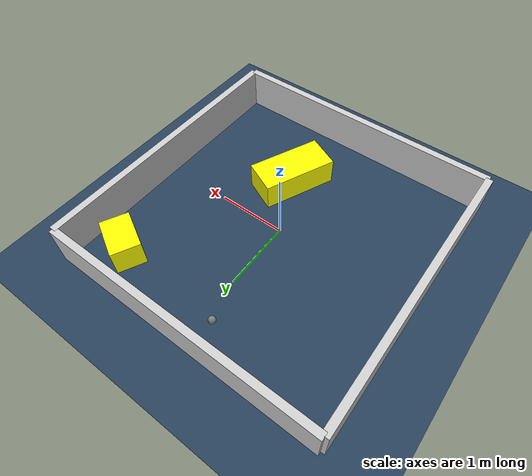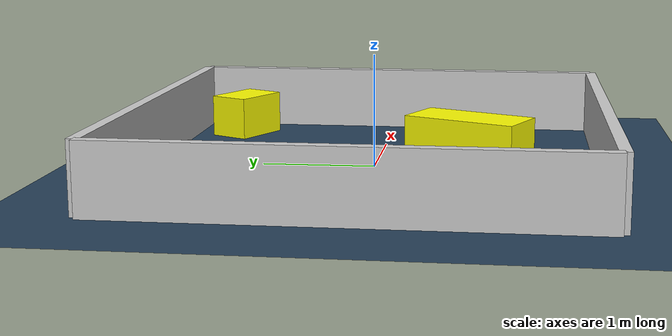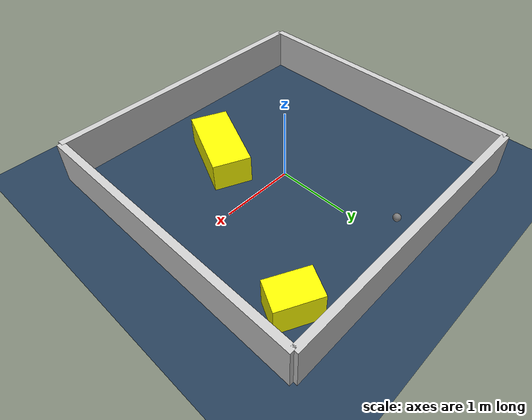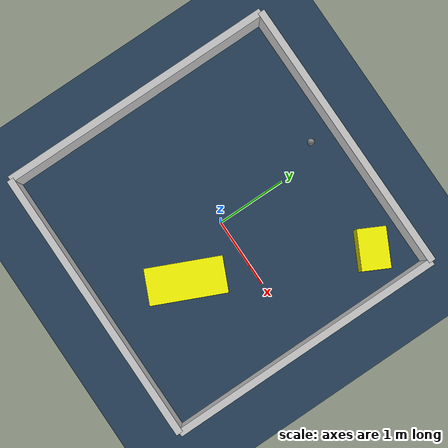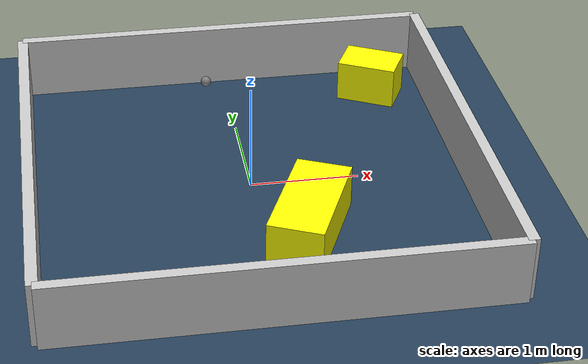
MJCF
<?xml version="1.0" ?>
<mujoco model="generated_environment">
  <option timestep="0.01" integrator="RK4" cone="elliptic"/>
  <default>
    <geom density="1"/>
  </default>
  <asset>
    <texture builtin="gradient" height="3072" rgb1="0.3 0.5 0.7" rgb2="0 0 0" type="skybox" width="512"/>
    <texture builtin="checker" height="300" mark="edge" markrgb="0.8 0.8 0.8" name="groundplane" rgb1="0.2 0.3 0.4" rgb2="0.1 0.2 0.3" type="2d" width="300"/>
    <material name="groundplane" reflectance="0.2" texrepeat="5 5" texture="groundplane" texuniform="true"/>
    <material name="robot" rgba="0.0 1.0 0.0 1"/>
  </asset>
  <worldbody>
    <light dir="0 0 -1" directional="true" pos="0 0 1.5"/>
    <geom condim="4" friction="1.0 0.005 0.001" material="groundplane" name="floor" size="0 0 0.05" type="plane"/>
    <body name="walls">
      <geom name="wall_1" condim="4" pos="-2.0 0.0 0.3" rgba="0.800000011920929 0.800000011920929 0.800000011920929 1.0" size="0.05 2.0 0.3" type="box"/>
      <geom name="wall_2" condim="4" pos="2.0 0.0 0.3" rgba="0.800000011920929 0.800000011920929 0.800000011920929 1.0" size="0.05 2.0 0.3" type="box"/>
      <geom name="wall_3" condim="4" pos="0.0 -2.0 0.3" rgba="0.800000011920929 0.800000011920929 0.800000011920929 1.0" size="2.0 0.05 0.3" type="box"/>
      <geom name="wall_4" condim="4" pos="0.0 2.0 0.3" rgba="0.800000011920929 0.800000011920929 0.800000011920929 1.0" size="2.0 0.05 0.3" type="box"/>
    </body>
    <body name="robot">
      <joint name="joint_x" type="slide" pos="0 0 0" axis="1 0 0"/>
      <joint name="joint_y" type="slide" pos="0 0 0" axis="0 1 0"/>
      <geom name="robot" type="sphere" pos="-0.21491899710382767 1.6185447978243044 0.2" size="0.05" mass="5." friction="1.0 0.005 0.0001" condim="4"/>
      <site name="sensor_ball"/>
    </body>
    <body name="obstacle_1_movable">
      <geom name="obstacle_1_movable" condim="4" pos="1.4433553288604912 1.4823722744323646 0.2" euler="0 0 332.8611978281746" friction="1.0 0.005 0.001" rgba="1 1 0 1" size="0.28526279842680713 0.2000788086479005 0.2" type="box" mass="0.1"/>
      <joint type="free"/>
    </body>
    <body name="obstacle_2_movable">
      <geom name="obstacle_2_movable" condim="4" pos="0.3958181692824694 -0.8247748237731537 0.2" euler="0 0 65.69131203608715" friction="1.0 0.005 0.001" rgba="1 1 0 1" size="0.5341609669414178 0.25248615102133 0.2" type="box" mass="0.1"/>
      <joint type="free"/>
    </body>
  </worldbody>
  <actuator>
    <motor name="actuator_x" joint="joint_x" gear="1" ctrlrange="-1 1"/>
    <motor name="actuator_y" joint="joint_y" gear="1" ctrlrange="-1 1"/>
  </actuator>
</mujoco>
